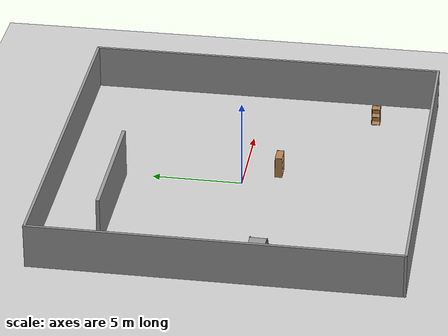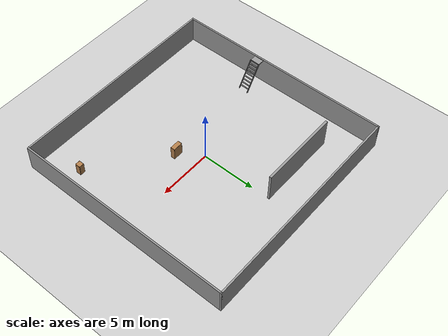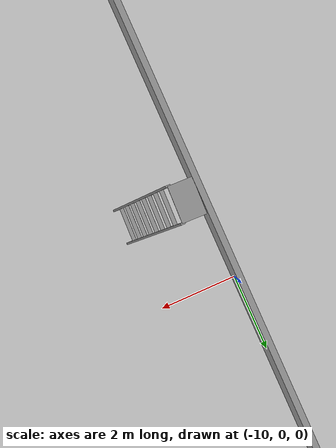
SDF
<sdf version="1.6">
 <world name="default">
  <light name="sun" type="directional">
   <pose>0 0 10 0 -0 0</pose>
   <diffuse>0.8 0.8 0.8 1</diffuse>
   <specular>0.2 0.2 0.2 1</specular>
   <attenuation>
    <range>1000</range>
    <constant>0.9</constant>
    <linear>0.01</linear>
    <quadratic>0.001</quadratic>
   </attenuation>
   <direction>-0.5 0.1 -0.9</direction>
  </light>
  <model name="ground_plane">
   <static>1</static>
   <link name="link">
    <collision name="collision">
     <geometry><plane><normal>0 0 1</normal><size>100 100</size></plane></geometry>
     <surface>
      <contact><collide_bitmask>65535</collide_bitmask></contact>
      <friction><ode><mu>100</mu><mu2>50</mu2></ode></friction>
     </surface>
    </collision>
    <visual name="visual">
     <cast_shadows>0</cast_shadows>
     <geometry><plane><normal>0 0 1</normal><size>100 100</size></plane></geometry>
     <material>
      <script><uri>file://media/materials/scripts/gazebo.material</uri><name>Gazebo/Grey</name></script>
     </material>
    </visual>
   </link>
  </model>
  <gravity>0 0 -9.8</gravity>
  <magnetic_field>6e-06 2.3e-05 -4.2e-05</magnetic_field>
  <atmosphere type="adiabatic"/>
  <physics name="default_physics" default="0" type="ode">
   <max_step_size>0.001</max_step_size>
   <real_time_factor>1</real_time_factor>
   <real_time_update_rate>1000</real_time_update_rate>
  </physics>
  <scene><ambient>0.4 0.4 0.4 1</ambient><background>0.7 0.7 0.7 1</background><shadows>1</shadows></scene>
  <audio><device>default</device></audio>
  <spherical_coordinates>
   <surface_model>EARTH_WGS84</surface_model>
   <latitude_deg>0</latitude_deg>
   <longitude_deg>0</longitude_deg>
   <elevation>0</elevation>
   <heading_deg>0</heading_deg>
  </spherical_coordinates>
  <model name="opspace_20">
   <link name="Wall_1">
    <collision name="Wall_1_Collision">
     <geometry><box><size>20.15 0.15 2.5</size></box></geometry>
     <pose>0 0 1.25 0 -0 0</pose>
    </collision>
    <visual name="Wall_1_Visual">
     <pose>0 0 1.25 0 -0 0</pose>
     <geometry><box><size>20.15 0.15 2.5</size></box></geometry>
     <material>
      <script><uri>file://media/materials/scripts/gazebo.material</uri><name>Gazebo/Grey</name></script>
      <ambient>1 1 1 1</ambient>
     </material>
     <meta><layer>0</layer></meta>
    </visual>
    <pose>0 10 0 0 -0 0</pose>
   </link>
   <link name="Wall_3">
    <collision name="Wall_3_Collision">
     <geometry><box><size>20.15 0.15 2.5</size></box></geometry>
     <pose>0 0 1.25 0 -0 0</pose>
    </collision>
    <visual name="Wall_3_Visual">
     <pose>0 0 1.25 0 -0 0</pose>
     <geometry><box><size>20.15 0.15 2.5</size></box></geometry>
     <material>
      <script><uri>file://media/materials/scripts/gazebo.material</uri><name>Gazebo/Grey</name></script>
      <ambient>1 1 1 1</ambient>
     </material>
     <meta><layer>0</layer></meta>
    </visual>
    <pose>0 -10 0 0 -0 0</pose>
   </link>
   <link name="Wall_5">
    <collision name="Wall_5_Collision">
     <geometry><box><size>20.15 0.15 2.5</size></box></geometry>
     <pose>0 0 1.25 0 -0 0</pose>
    </collision>
    <visual name="Wall_5_Visual">
     <pose>0 0 1.25 0 -0 0</pose>
     <geometry><box><size>20.15 0.15 2.5</size></box></geometry>
     <material>
      <script><uri>file://media/materials/scripts/gazebo.material</uri><name>Gazebo/Grey</name></script>
      <ambient>1 1 1 1</ambient>
     </material>
     <meta><layer>0</layer></meta>
    </visual>
    <pose>-10 0 0 0 -0 1.5708</pose>
   </link>
   <link name="Wall_7">
    <collision name="Wall_7_Collision">
     <geometry><box><size>20.15 0.15 2.5</size></box></geometry>
     <pose>0 0 1.25 0 -0 0</pose>
    </collision>
    <visual name="Wall_7_Visual">
     <pose>0 0 1.25 0 -0 0</pose>
     <geometry><box><size>20.15 0.15 2.5</size></box></geometry>
     <material>
      <script><uri>file://media/materials/scripts/gazebo.material</uri><name>Gazebo/Grey</name></script>
      <ambient>1 1 1 1</ambient>
     </material>
     <meta><layer>0</layer></meta>
    </visual>
    <pose>10 0 0 0 -0 1.5708</pose>
   </link>
   <static>1</static>
  </model>
  <model name="bookshelf">
   <static>1</static>
   <link name="link">
    <inertial><mass>1</mass></inertial>
    <collision name="back">
     <pose>0 0.005 0.6 0 -0 0</pose>
     <geometry><box><size>0.9 0.01 1.2</size></box></geometry>
    </collision>
    <visual name="visual1">
     <pose>0 0.005 0.6 0 -0 0</pose>
     <geometry><box><size>0.9 0.01 1.2</size></box></geometry>
     <material>
      <script><uri>file://media/materials/scripts/gazebo.material</uri><name>Gazebo/Wood</name></script>
     </material>
    </visual>
    <collision name="left_side">
     <pose>0.45 -0.195 0.6 0 -0 0</pose>
     <geometry><box><size>0.02 0.4 1.2</size></box></geometry>
    </collision>
    <visual name="visual2">
     <pose>0.45 -0.195 0.6 0 -0 0</pose>
     <geometry><box><size>0.02 0.4 1.2</size></box></geometry>
     <material>
      <script><uri>file://media/materials/scripts/gazebo.material</uri><name>Gazebo/Wood</name></script>
     </material>
    </visual>
    <collision name="right_side">
     <pose>-0.45 -0.195 0.6 0 -0 0</pose>
     <geometry><box><size>0.02 0.4 1.2</size></box></geometry>
    </collision>
    <visual name="visual3">
     <pose>-0.45 -0.195 0.6 0 -0 0</pose>
     <geometry><box><size>0.02 0.4 1.2</size></box></geometry>
     <material>
      <script><uri>file://media/materials/scripts/gazebo.material</uri><name>Gazebo/Wood</name></script>
     </material>
    </visual>
    <collision name="bottom">
     <pose>0 -0.195 0.03 0 -0 0</pose>
     <geometry><box><size>0.88 0.4 0.06</size></box></geometry>
    </collision>
    <visual name="visual4">
     <pose>0 -0.195 0.03 0 -0 0</pose>
     <geometry><box><size>0.88 0.4 0.06</size></box></geometry>
     <material>
      <script><uri>file://media/materials/scripts/gazebo.material</uri><name>Gazebo/Wood</name></script>
     </material>
    </visual>
    <collision name="top">
     <pose>0 -0.195 1.19 0 -0 0</pose>
     <geometry><box><size>0.88 0.4 0.02</size></box></geometry>
    </collision>
    <visual name="visual5">
     <pose>0 -0.195 1.19 0 -0 0</pose>
     <geometry><box><size>0.88 0.4 0.02</size></box></geometry>
     <material>
      <script><uri>file://media/materials/scripts/gazebo.material</uri><name>Gazebo/Wood</name></script>
     </material>
    </visual>
    <collision name="low_shelf">
     <pose>0 -0.195 0.43 0 -0 0</pose>
     <geometry><box><size>0.88 0.4 0.02</size></box></geometry>
    </collision>
    <visual name="visual6">
     <pose>0 -0.195 0.43 0 -0 0</pose>
     <geometry><box><size>0.88 0.4 0.02</size></box></geometry>
     <material>
      <script><uri>file://media/materials/scripts/gazebo.material</uri><name>Gazebo/Wood</name></script>
     </material>
    </visual>
    <collision name="high_shelf">
     <pose>0 -0.195 0.8 0 -0 0</pose>
     <geometry><box><size>0.88 0.4 0.02</size></box></geometry>
    </collision>
    <visual name="visual7">
     <pose>0 -0.195 0.8 0 -0 0</pose>
     <geometry><box><size>0.88 0.4 0.02</size></box></geometry>
     <material>
      <script><uri>file://media/materials/scripts/gazebo.material</uri><name>Gazebo/Wood</name></script>
     </material>
    </visual>
   </link>
   <pose>1.39789 -1.73199 0 0 -0 0</pose>
  </model>
  <model name="cabinet">
   <static>1</static>
   <link name="cabinet_bottom_plate">
    <inertial>
     <pose>0 0 -1 0 -0 0</pose>
     <inertia><ixx>2.05</ixx><ixy>0</ixy><ixz>0</ixz><iyy>2.05</iyy><iyz>0</iyz><izz>2.05</izz></inertia>
     <mass>25</mass>
    </inertial>
    <collision name="cabinet_bottom_plate_geom">
     <pose>0 0 0.01 0 -0 0</pose>
     <geometry><box><size>0.45 0.45 0.02</size></box></geometry>
    </collision>
    <visual name="cabinet_bottom_plate_geom_visual">
     <pose>0 0 0.01 0 -0 0</pose>
     <geometry><box><size>0.45 0.45 0.02</size></box></geometry>
     <material>
      <script><uri>file://media/materials/scripts/gazebo.material</uri><name>Gazebo/Wood</name></script>
     </material>
    </visual>
    <collision name="cabinet_bottom_plate_geom_cabinet_back_plate">
     <pose>0.235 0 0.51 0 -0 0</pose>
     <geometry><box><size>0.02 0.45 1.02</size></box></geometry>
    </collision>
    <visual name="cabinet_bottom_plate_geom_cabinet_back_plate_visual">
     <pose>0.235 0 0.51 0 -0 0</pose>
     <geometry><box><size>0.02 0.45 1.02</size></box></geometry>
     <material>
      <script><uri>file://media/materials/scripts/gazebo.material</uri><name>Gazebo/Wood</name></script>
     </material>
    </visual>
    <collision name="cabinet_bottom_plate_geom_cabinet_left_plate">
     <pose>0 0.235 0.51 0 -0 0</pose>
     <geometry><box><size>0.45 0.02 1.02</size></box></geometry>
    </collision>
    <visual name="cabinet_bottom_plate_geom_cabinet_left_plate_visual">
     <pose>0 0.235 0.51 0 -0 0</pose>
     <geometry><box><size>0.45 0.02 1.02</size></box></geometry>
     <material>
      <script><uri>file://media/materials/scripts/gazebo.material</uri><name>Gazebo/Wood</name></script>
     </material>
    </visual>
    <collision name="cabinet_bottom_plate_geom_cabinet_middle_plate">
     <pose>0 0 0.51 0 -0 0</pose>
     <geometry><box><size>0.45 0.45 0.02</size></box></geometry>
    </collision>
    <visual name="cabinet_bottom_plate_geom_cabinet_middle_plate_visual">
     <pose>0 0 0.51 0 -0 0</pose>
     <geometry><box><size>0.45 0.45 0.02</size></box></geometry>
     <material>
      <script><uri>file://media/materials/scripts/gazebo.material</uri><name>Gazebo/Wood</name></script>
     </material>
    </visual>
    <collision name="cabinet_bottom_plate_geom_cabinet_right_plate">
     <pose>0 -0.235 0.51 0 -0 0</pose>
     <geometry><box><size>0.45 0.02 1.02</size></box></geometry>
    </collision>
    <visual name="cabinet_bottom_plate_geom_cabinet_right_plate_visual">
     <pose>0 -0.235 0.51 0 -0 0</pose>
     <geometry><box><size>0.45 0.02 1.02</size></box></geometry>
     <material>
      <script><uri>file://media/materials/scripts/gazebo.material</uri><name>Gazebo/Wood</name></script>
     </material>
    </visual>
    <collision name="cabinet_bottom_plate_geom_cabinet_top_plate">
     <pose>0 0 1.01 0 -0 0</pose>
     <geometry><box><size>0.45 0.45 0.02</size></box></geometry>
    </collision>
    <visual name="cabinet_bottom_plate_geom_cabinet_top_plate_visual">
     <pose>0 0 1.01 0 -0 0</pose>
     <geometry><box><size>0.45 0.45 0.02</size></box></geometry>
     <material>
      <script><uri>file://media/materials/scripts/gazebo.material</uri><name>Gazebo/Wood</name></script>
     </material>
    </visual>
   </link>
   <pose>7.79934 -6.67598 0 0 -0 0</pose>
  </model>
  <model name="grey_wall">
   <static>1</static>
   <link name="link">
    <pose>0 0 1.4 0 -0 0</pose>
    <collision name="collision"><geometry><box><size>7.5 0.2 2.8</size></box></geometry></collision>
    <visual name="visual">
     <cast_shadows>0</cast_shadows>
     <geometry><box><size>7.5 0.2 2.8</size></box></geometry>
     <material>
      <script>
       <uri>model://grey_wall/materials/scripts</uri>
       <uri>model://grey_wall/materials/textures</uri>
       <name>vrc/grey_wall</name>
      </script>
     </material>
    </visual>
   </link>
   <pose>-3.74553 6.59503 0 0 -0 0</pose>
  </model>
  <model name="ladder_60deg_0rails">
   <static>1</static>
   <link name="step0">
    <pose>0 0.15396 0.266667 0 -0 0</pose>
    <inertial>
     <mass>9.75482</mass>
     <inertia>
      <ixx>0.00957124</ixx>
      <iyy>0.65963</iyy>
      <izz>0.666842</izz>
      <ixy>0</ixy>
      <ixz>0</ixz>
      <iyz>0</iyz>
     </inertia>
    </inertial>
    <collision name="collision"><geometry><box><size>0.9 0.1016 0.0381</size></box></geometry></collision>
    <visual name="visual">
     <geometry><box><size>0.9 0.1016 0.0381</size></box></geometry>
     <material>
      <script><uri>file://media/materials/scripts/gazebo.material</uri><name>Gazebo/Grey</name></script>
     </material>
    </visual>
   </link>
   <link name="step1">
    <pose>0 0.30792 0.533333 0 -0 0</pose>
    <inertial>
     <mass>9.75482</mass>
     <inertia>
      <ixx>0.00957124</ixx>
      <iyy>0.65963</iyy>
      <izz>0.666842</izz>
      <ixy>0</ixy>
      <ixz>0</ixz>
      <iyz>0</iyz>
     </inertia>
    </inertial>
    <collision name="collision"><geometry><box><size>0.9 0.1016 0.0381</size></box></geometry></collision>
    <visual name="visual">
     <geometry><box><size>0.9 0.1016 0.0381</size></box></geometry>
     <material>
      <script><uri>file://media/materials/scripts/gazebo.material</uri><name>Gazebo/Grey</name></script>
     </material>
    </visual>
   </link>
   <link name="step2">
    <pose>0 0.46188 0.8 0 -0 0</pose>
    <inertial>
     <mass>9.75482</mass>
     <inertia>
      <ixx>0.00957124</ixx>
      <iyy>0.65963</iyy>
      <izz>0.666842</izz>
      <ixy>0</ixy>
      <ixz>0</ixz>
      <iyz>0</iyz>
     </inertia>
    </inertial>
    <collision name="collision"><geometry><box><size>0.9 0.1016 0.0381</size></box></geometry></collision>
    <visual name="visual">
     <geometry><box><size>0.9 0.1016 0.0381</size></box></geometry>
     <material>
      <script><uri>file://media/materials/scripts/gazebo.material</uri><name>Gazebo/Grey</name></script>
     </material>
    </visual>
   </link>
   <link name="step3">
    <pose>0 0.61584 1.06667 0 -0 0</pose>
    <inertial>
     <mass>9.75482</mass>
     <inertia>
      <ixx>0.00957124</ixx>
      <iyy>0.65963</iyy>
      <izz>0.666842</izz>
      <ixy>0</ixy>
      <ixz>0</ixz>
      <iyz>0</iyz>
     </inertia>
    </inertial>
    <collision name="collision"><geometry><box><size>0.9 0.1016 0.0381</size></box></geometry></collision>
    <visual name="visual">
     <geometry><box><size>0.9 0.1016 0.0381</size></box></geometry>
     <material>
      <script><uri>file://media/materials/scripts/gazebo.material</uri><name>Gazebo/Grey</name></script>
     </material>
    </visual>
   </link>
   <link name="step4">
    <pose>0 0.7698 1.33333 0 -0 0</pose>
    <inertial>
     <mass>9.75482</mass>
     <inertia>
      <ixx>0.00957124</ixx>
      <iyy>0.65963</iyy>
      <izz>0.666842</izz>
      <ixy>0</ixy>
      <ixz>0</ixz>
      <iyz>0</iyz>
     </inertia>
    </inertial>
    <collision name="collision"><geometry><box><size>0.9 0.1016 0.0381</size></box></geometry></collision>
    <visual name="visual">
     <geometry><box><size>0.9 0.1016 0.0381</size></box></geometry>
     <material>
      <script><uri>file://media/materials/scripts/gazebo.material</uri><name>Gazebo/Grey</name></script>
     </material>
    </visual>
   </link>
   <link name="step5">
    <pose>0 0.92376 1.6 0 -0 0</pose>
    <inertial>
     <mass>9.75482</mass>
     <inertia>
      <ixx>0.00957124</ixx>
      <iyy>0.65963</iyy>
      <izz>0.666842</izz>
      <ixy>0</ixy>
      <ixz>0</ixz>
      <iyz>0</iyz>
     </inertia>
    </inertial>
    <collision name="collision"><geometry><box><size>0.9 0.1016 0.0381</size></box></geometry></collision>
    <visual name="visual">
     <geometry><box><size>0.9 0.1016 0.0381</size></box></geometry>
     <material>
      <script><uri>file://media/materials/scripts/gazebo.material</uri><name>Gazebo/Grey</name></script>
     </material>
    </visual>
   </link>
   <link name="step6">
    <pose>0 1.07772 1.86667 0 -0 0</pose>
    <inertial>
     <mass>9.75482</mass>
     <inertia>
      <ixx>0.00957124</ixx>
      <iyy>0.65963</iyy>
      <izz>0.666842</izz>
      <ixy>0</ixy>
      <ixz>0</ixz>
      <iyz>0</iyz>
     </inertia>
    </inertial>
    <collision name="collision"><geometry><box><size>0.9 0.1016 0.0381</size></box></geometry></collision>
    <visual name="visual">
     <geometry><box><size>0.9 0.1016 0.0381</size></box></geometry>
     <material>
      <script><uri>file://media/materials/scripts/gazebo.material</uri><name>Gazebo/Grey</name></script>
     </material>
    </visual>
   </link>
   <link name="step7">
    <pose>0 1.23168 2.13333 0 -0 0</pose>
    <inertial>
     <mass>9.75482</mass>
     <inertia>
      <ixx>0.00957124</ixx>
      <iyy>0.65963</iyy>
      <izz>0.666842</izz>
      <ixy>0</ixy>
      <ixz>0</ixz>
      <iyz>0</iyz>
     </inertia>
    </inertial>
    <collision name="collision"><geometry><box><size>0.9 0.1016 0.0381</size></box></geometry></collision>
    <visual name="visual">
     <geometry><box><size>0.9 0.1016 0.0381</size></box></geometry>
     <material>
      <script><uri>file://media/materials/scripts/gazebo.material</uri><name>Gazebo/Grey</name></script>
     </material>
    </visual>
   </link>
   <link name="landing">
    <pose>0 1.68564 2.4 0 -0 0</pose>
    <inertial>
     <mass>57.6072</mass>
     <inertia><ixx>1.73518</ixx><iyy>3.89545</iyy><izz>5.6167</izz><ixy>0</ixy><ixz>0</ixz><iyz>0</iyz></inertia>
    </inertial>
    <collision name="collision"><geometry><box><size>0.9 0.6 0.1016</size></box></geometry></collision>
    <visual name="visual">
     <geometry><box><size>0.9 0.6 0.1016</size></box></geometry>
     <material>
      <script><uri>file://media/materials/scripts/gazebo.material</uri><name>Gazebo/Grey</name></script>
     </material>
    </visual>
   </link>
   <link name="left_side_wall">
    <pose>-0.45 0.69282 1.2 1.0472 -0 0</pose>
    <collision name="collision"><geometry><box><size>0.0508 2.85128 0.13</size></box></geometry></collision>
    <visual name="visual">
     <geometry><box><size>0.0508 2.85128 0.13</size></box></geometry>
     <material>
      <script><uri>file://media/materials/scripts/gazebo.material</uri><name>Gazebo/Grey</name></script>
     </material>
    </visual>
   </link>
   <link name="right_side_wall">
    <pose>0.45 0.69282 1.2 1.0472 -0 0</pose>
    <collision name="collision"><geometry><box><size>0.0508 2.85128 0.13</size></box></geometry></collision>
    <visual name="visual">
     <geometry><box><size>0.0508 2.85128 0.13</size></box></geometry>
     <material>
      <script><uri>file://media/materials/scripts/gazebo.material</uri><name>Gazebo/Grey</name></script>
     </material>
    </visual>
   </link>
   <pose>-7.93269 -2.30391 0 0 -0 1.53951</pose>
  </model>
 </world>
</sdf>
